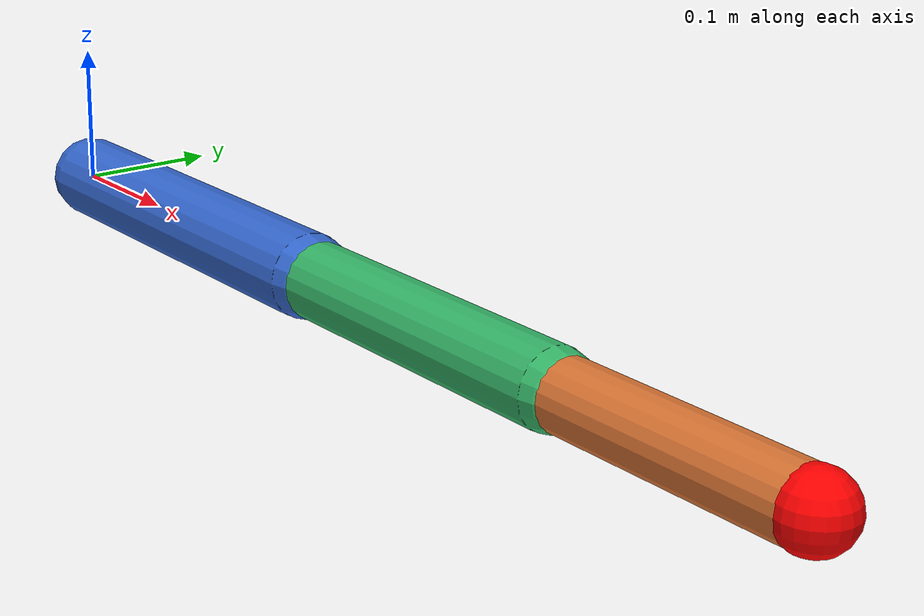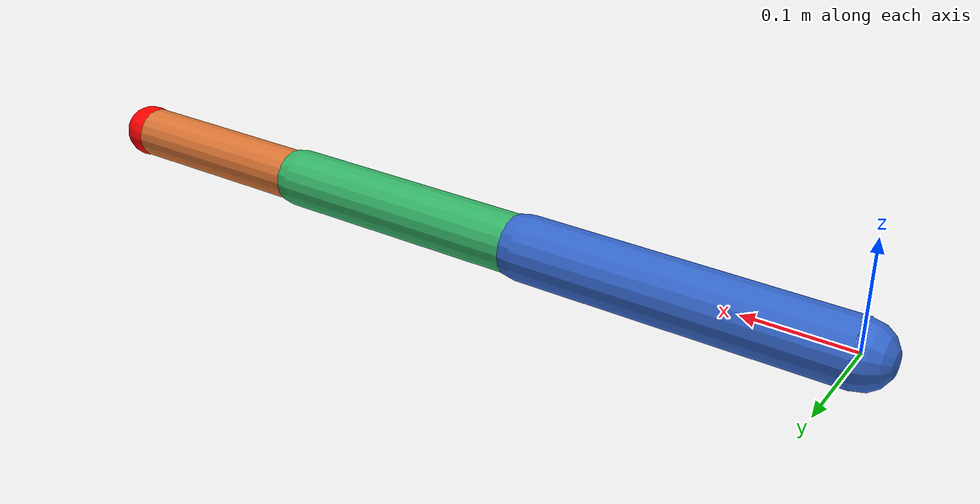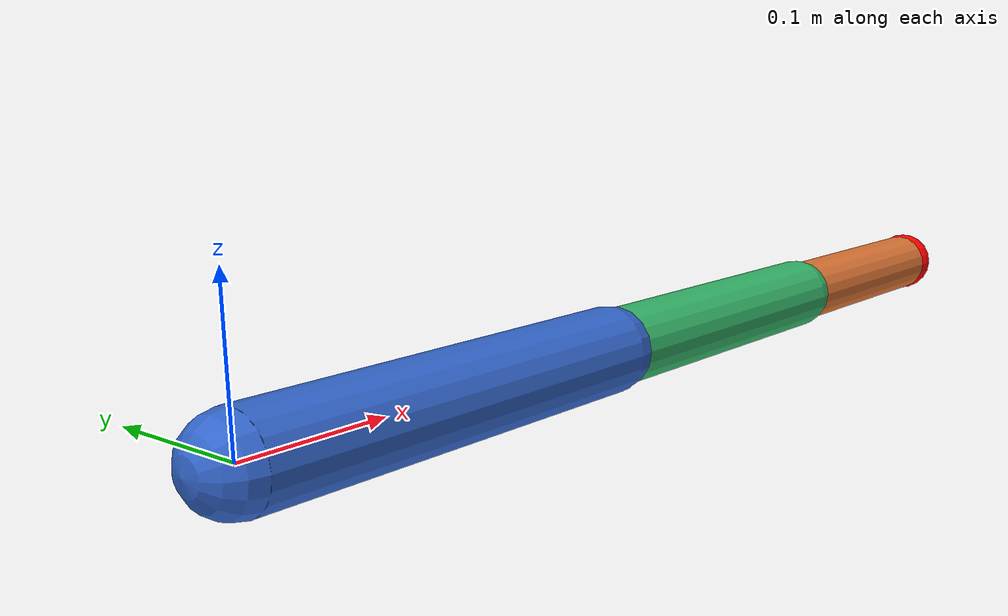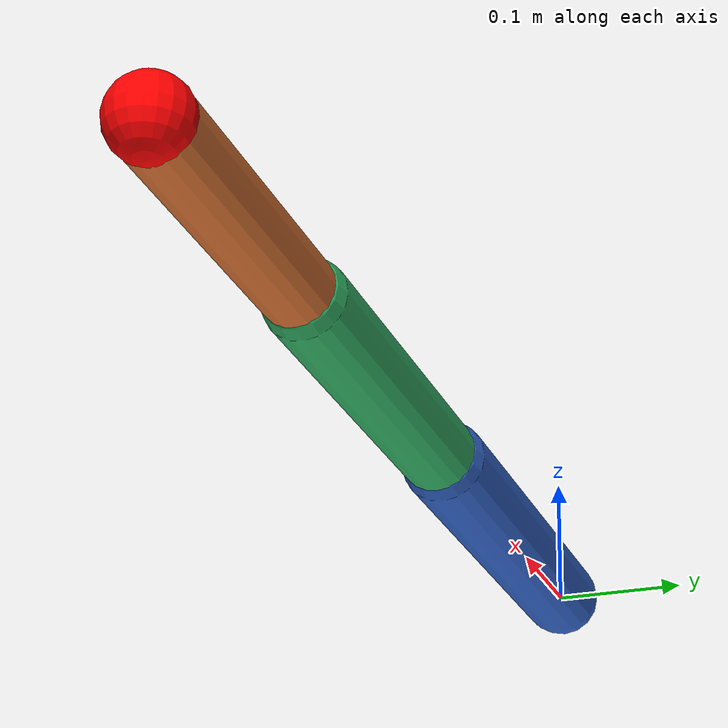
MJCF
<mujoco model="arm3r">
  <option gravity="0 0 0"/>

  <visual>
    <global offwidth="960" offheight="720"/>
    <headlight ambient="0.4 0.4 0.4" diffuse="0.6 0.6 0.6"/>
    <!-- size of the rendered frame-axis triads (x=red, y=green, z=blue) -->
    <scale framelength="0.6" framewidth="0.02"/>
  </visual>

  <worldbody>
    <light pos="0.4 -0.4 1.2" dir="0 0 -1"/>
    <camera name="cam" pos="0.45 -1.15 0.75" xyaxes="1 0 0 0 0.55 0.83"/>

    <!-- world/space frame {s} marker at the origin (gets an axis triad) -->
    <site name="world" pos="0 0 0" size="0.012" rgba="1 1 1 0.3"/>

    <!-- small fixed base marker at the origin -->
    <geom type="sphere" size="0.028" pos="0 0 0" rgba="0.3 0.3 0.3 1"/>

    <body name="link1" pos="0 0 0">
      <joint name="j1" type="hinge" axis="0 0 1"/>
      <geom type="capsule" fromto="0 0 0 0.30 0 0" size="0.03" rgba="0.20 0.40 0.80 1"/>
      <body name="link2" pos="0.30 0 0">
        <joint name="j2" type="hinge" axis="0 1 0"/>
        <geom type="capsule" fromto="0 0 0 0.25 0 0" size="0.027" rgba="0.20 0.70 0.40 1"/>
        <body name="link3" pos="0.25 0 0">
          <joint name="j3" type="hinge" axis="0 1 0"/>
          <geom type="capsule" fromto="0 0 0 0.20 0 0" size="0.024" rgba="0.85 0.45 0.20 1"/>
          <site name="ee" pos="0.20 0 0" size="0.025" rgba="1 0 0 1"/>
        </body>
      </body>
    </body>
  </worldbody>
</mujoco>
